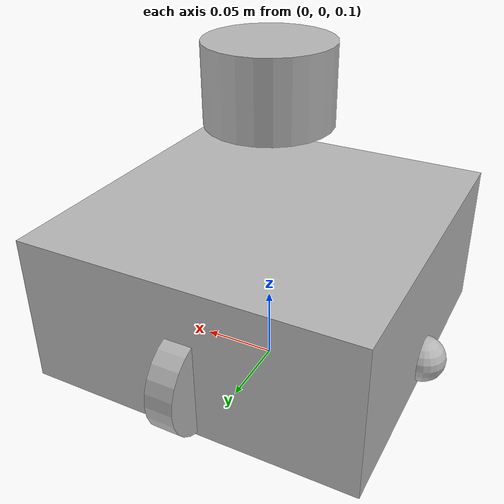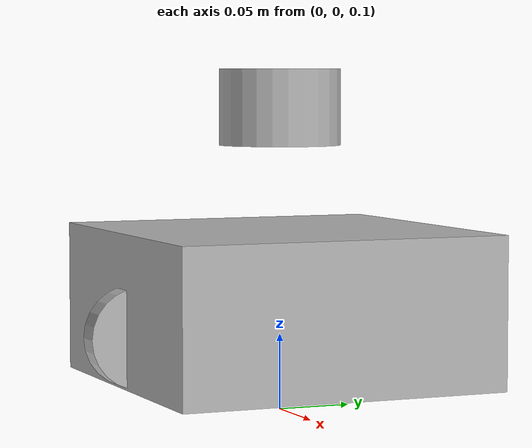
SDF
<?xml version="1.0" ?>
<sdf version="1.9">
  <model name="turtlebot3_waffle">

    <!-- Spawn slightly above ground -->
    <pose>0 0 0.12 0 0 0</pose>

    <!-- ================= BASE ================= -->
    <link name="base_link">

      <!-- LOW CENTER OF MASS -->
      <pose>0 0 0.05 0 0 0</pose>

      <inertial>
        <mass>3.2</mass>
        <inertia>
          <ixx>0.045</ixx>
          <iyy>0.045</iyy>
          <izz>0.065</izz>
        </inertia>
      </inertial>

      <!-- BIG FLAT CONTACT PATCH -->
      <collision name="base_collision">
        <geometry>
          <box>
            <size>0.22 0.22 0.10</size>
          </box>
        </geometry>
        <surface>
          <contact>
            <stiffness>8000</stiffness>
            <damping>300</damping>
          </contact>
          <friction>
            <ode>
              <mu>1.2</mu>
              <mu2>1.2</mu2>
            </ode>
          </friction>
        </surface>
      </collision>

      <visual name="base_visual">
        <geometry>
          <box>
            <size>0.22 0.22 0.10</size>
          </box>
        </geometry>
      </visual>
    </link>

    <!-- ================= LIDAR ================= -->
    <link name="base_scan">
    <!-- Centered on robot, slightly above base -->
    <pose>0 0 0.18 0 0 0</pose>

    <inertial>
        <mass>0.05</mass>
        <inertia>
        <ixx>0.0002</ixx>
        <iyy>0.0002</iyy>
        <izz>0.0002</izz>
        </inertia>
    </inertial>

    <visual name="lidar_visual">
        <geometry>
        <cylinder>
            <radius>0.04</radius>
            <length>0.05</length>
        </cylinder>
        </geometry>
    </visual>

    <collision name="lidar_collision">
        <geometry>
        <cylinder>
            <radius>0.04</radius>
            <length>0.05</length>
        </cylinder>
        </geometry>
    </collision>

    <!-- LiDAR SENSOR -->
    <sensor name="lidar" type="gpu_lidar">
        <always_on>true</always_on>
        <update_rate>10</update_rate>
        <topic>/scan</topic>
        <gz_frame_id>base_scan</gz_frame_id>
        <visualize>true</visualize>

        <lidar>
        <scan>
            <horizontal>
            <samples>360</samples>
            <min_angle>-3.14159</min_angle>
            <max_angle>3.14159</max_angle>
            </horizontal>
        </scan>
        <range>
            <min>0.12</min>
            <max>3.5</max>
        </range>
        </lidar>
    </sensor>
    </link>

    <!-- ================= LEFT WHEEL ================= -->
    <link name="wheel_left_link">
      <pose>0 0.10 0.033 0 1.5708 0</pose>

      <inertial>
        <mass>0.18</mass>
        <inertia>
          <ixx>0.0006</ixx>
          <iyy>0.0006</iyy>
          <izz>0.0006</izz>
        </inertia>
      </inertial>

      <collision name="wheel_left_collision">
        <geometry>
          <cylinder>
            <radius>0.033</radius>
            <length>0.018</length>
          </cylinder>
        </geometry>
        <surface>
          <contact>
            <stiffness>6000</stiffness>
            <damping>250</damping>
          </contact>
          <friction>
            <ode>
              <mu>2.0</mu>
              <mu2>2.0</mu2>
            </ode>
          </friction>
        </surface>
      </collision>

      <visual name="wheel_left_visual">
        <geometry>
          <cylinder>
            <radius>0.033</radius>
            <length>0.018</length>
          </cylinder>
        </geometry>
      </visual>
    </link>

    <!-- ================= RIGHT WHEEL ================= -->
    <link name="wheel_right_link">
      <pose>0 -0.10 0.033 0 1.5708 0</pose>

      <inertial>
        <mass>0.18</mass>
        <inertia>
          <ixx>0.0006</ixx>
          <iyy>0.0006</iyy>
          <izz>0.0006</izz>
        </inertia>
      </inertial>

      <collision name="wheel_right_collision">
        <geometry>
          <cylinder>
            <radius>0.033</radius>
            <length>0.018</length>
          </cylinder>
        </geometry>
        <surface>
          <contact>
            <stiffness>6000</stiffness>
            <damping>250</damping>
          </contact>
          <friction>
            <ode>
              <mu>2.0</mu>
              <mu2>2.0</mu2>
            </ode>
          </friction>
        </surface>
      </collision>

      <visual name="wheel_right_visual">
        <geometry>
          <cylinder>
            <radius>0.033</radius>
            <length>0.018</length>
          </cylinder>
        </geometry>
      </visual>
    </link>

    <!-- ================= CASTER ================= -->
    <link name="caster_back_link">
      <pose>-0.11 0 0.015 0 0 0</pose>

      <inertial>
        <mass>0.08</mass>
        <inertia>
          <ixx>0.0002</ixx>
          <iyy>0.0002</iyy>
          <izz>0.0002</izz>
        </inertia>
      </inertial>

      <collision name="caster_collision">
        <geometry>
          <sphere>
            <radius>0.015</radius>
          </sphere>
        </geometry>
        <surface>
          <contact>
            <stiffness>5000</stiffness>
            <damping>400</damping>
          </contact>
          <friction>
            <ode>
              <mu>0.8</mu>
              <mu2>0.8</mu2>
            </ode>
          </friction>
        </surface>
      </collision>

      <visual name="caster_visual">
        <geometry>
          <sphere>
            <radius>0.015</radius>
          </sphere>
        </geometry>
      </visual>
    </link>

    <!-- ================= JOINTS ================= -->

    <joint name="base_scan_joint" type="fixed">
        <parent>base_link</parent>
        <child>base_scan</child>
    </joint>

    <joint name="wheel_left_joint" type="revolute">
      <parent>base_link</parent>
      <child>wheel_left_link</child>
      <axis>
        <xyz>0 1 0</xyz>
      </axis>
    </joint>

    <joint name="wheel_right_joint" type="revolute">
      <parent>base_link</parent>
      <child>wheel_right_link</child>
      <axis>
        <xyz>0 1 0</xyz>
      </axis>
    </joint>

    <joint name="caster_joint" type="ball">
      <parent>base_link</parent>
      <child>caster_back_link</child>
    </joint>

    <!-- ================= DIFF DRIVE ================= -->
    <plugin filename="gz-sim-diff-drive-system"
            name="gz::sim::systems::DiffDrive">
      <left_joint>wheel_left_joint</left_joint>
      <right_joint>wheel_right_joint</right_joint>
      <wheel_separation>0.20</wheel_separation>
      <wheel_radius>0.033</wheel_radius>
      <odom_publish_frequency>50</odom_publish_frequency>
      <topic>/cmd_vel</topic>
      <odom_topic>/odom</odom_topic>
      <frame_id>odom</frame_id>
      <child_frame_id>base_link</child_frame_id>
    </plugin>

    <!-- Pose Publisher -->
    <plugin filename="gz-sim-pose-publisher-system" name="gz::sim::systems::PosePublisher">
      <publish_link_pose>true</publish_link_pose>
      <publish_sensor_pose>true</publish_sensor_pose>
      <publish_collision_pose>false</publish_collision_pose>
      <publish_visual_pose>false</publish_visual_pose>
      <publish_nested_model_pose>true</publish_nested_model_pose>
      <update_frequency>50</update_frequency>
    </plugin>

  </model>
</sdf>
